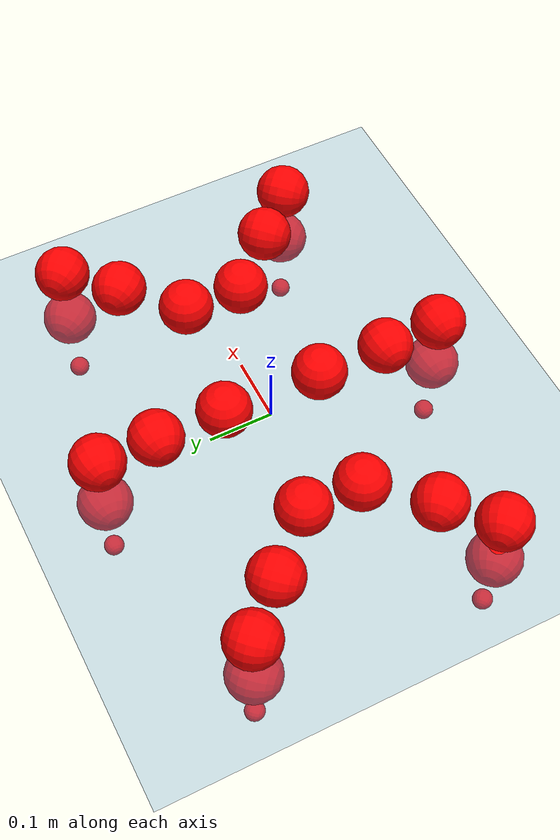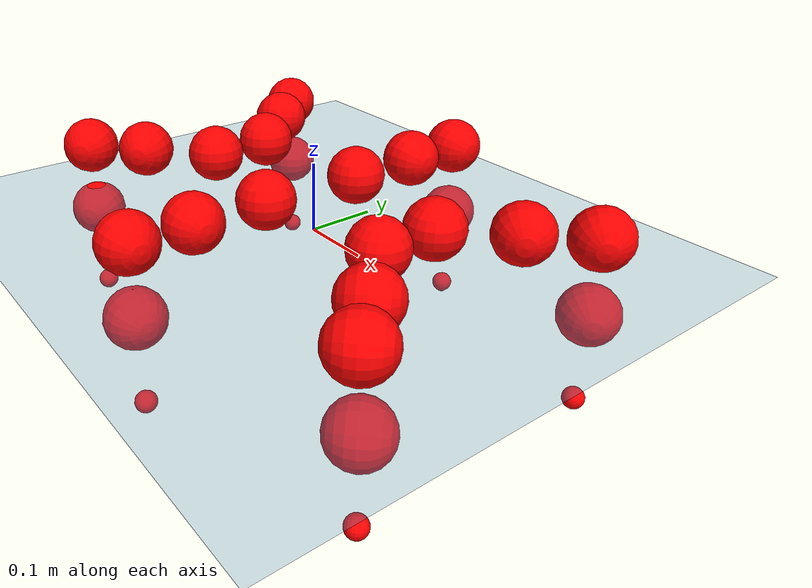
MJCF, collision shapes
<mujoco model="Golem">
  <compiler angle="radian" assetdir="assets" balanceinertia="true" inertiafromgeom="false"/>

  <option timestep="0.005" density="1.2" viscosity="2e-05"/>

  <size nkey="1"/>

  <visual>
    <quality shadowsize="8192"/>
    <map shadowclip="0.5"/>
  </visual>

  <default>
    <default class="/">
      <joint armature="0.01" damping="0.01" frictionloss="0.01"/>
      <geom contype="0" conaffinity="0" group="1" solref="-1000 -80"/>
      <site size="0.01 0.005 0.005" group="5"/>
      <general forcelimited="true" biastype="affine" gainprm="25" biasprm="0 -25 -0.5"/>
      <default class="visual">
        <geom type="mesh" group="2"/>
      </default>
      <default class="collision">
        <geom group="3"/>
      </default>
      <default class="foot">
        <geom size="0.01 0 0" condim="6" group="4" priority="1" solimp="0.015 1 0.01"/>
      </default>
      <default class="reward_collision_sphere">
        <geom group="5" rgba="1 0 0 1"/>
      </default>
    </default>
  </default>

  <asset>
    <texture type="skybox" colorspace="auto" name="//unnamed_texture_0" builtin="gradient" rgb1="0.95 0.95 0.95" rgb2="0.95 0.95 0.95" width="100" height="600"/>
    <texture type="2d" colorspace="auto" name="texplane" builtin="checker" rgb1="0.345 0.575 0.748" rgb2="0.345 0.575 0.748" markrgb="1 1 1" width="512" height="512"/>
    <material name="MatPlane" class="/" texture="texplane" texuniform="true" texrepeat="2 2" specular="0.9"/>
    <mesh name="body" class="/" file="body.stl" scale="0.001 0.001 0.001"/>
    <mesh name="coxa" class="/" file="coxa.stl" scale="0.001 0.001 0.001"/>
    <mesh name="femur" class="/" file="femur.stl" scale="0.001 0.001 0.001"/>
    <mesh name="tibia" class="/" file="tibia.stl" scale="0.001 0.001 0.001"/>
    <mesh name="tarsus" class="/" file="tarsus.stl" scale="0.001 0.001 0.001"/>
  </asset>

  <worldbody>
    <geom name="floor" class="/" size="100 100 0.125" type="plane" group="0" material="MatPlane"/>
    <light name="toplight_shadow" class="/" pos="0 0 5" dir="0.0990148 0.0990148 -0.990148" type="directional" ambient="0.04 0.04 0.04" diffuse="0.55 0.55 0.55" specular="0.12 0.12 0.12"/>
    <light name="toplight_fill" class="/" pos="0 0 5" dir="0.0990148 0.0990148 -0.990148" type="directional" castshadow="false" ambient="0.04 0.04 0.04" diffuse="0.3 0.3 0.3" specular="0.08 0.08 0.08"/>
    <body name="trunk" pos="-0.00105452 0.000220554 1.92747e-07" quat="1 -0.00018509 0.000167968 -0.000111265">
      <inertial pos="0.000744789 0.00091338 -0.00491156" quat="0.999926 -0.000573255 0.0112374 0.00470206" mass="4.17765" diaginertia="0.0299924 0.00458473 0.0115301"/>
      <joint name="//unnamed_joint_0" type="free"/>
      <geom name="//unnamed_geom_1" class="/" pos="0 0 0.0658943" quat="1 0 0 0" type="mesh" rgba="0.9 0.9 0.9 1" mesh="body"/>
      <site name="imu" class="/" pos="0.159847 0.00482044 0.104085" size="0.0104275"/>
      <camera name="track" class="/" pos="0 -1.71346 0" quat="0.707107 0.707107 0 0" mode="trackcom"/>
      <camera name="ego_camera" class="/" pos="0.161451 0 0.10296" quat="-0.5 -0.5 0.5 0.5"/>
      <body name="coxa_RR" pos="-0.220659 -0.0694299 0.0651518" quat="0.382528 0.000224029 2.42357e-05 -0.923944">
        <inertial pos="0.00070927 -0.000201109 0.000843462" quat="0.999993 0.00383253 -0.000145803 4.08395e-05" mass="0.223099" diaginertia="0.0297585 0.00450249 0.0113542"/>
        <joint name="coxa_joint_RR" class="/" pos="0 0 0" axis="-0.000492435 -0.0010065 -0.999999" range="-3.12937 3.18747" armature="0.010551" damping="0.0139177" frictionloss="0.0102575"/>
        <geom name="//unnamed_geom_2" class="/" type="mesh" rgba="0.2 0.2 0.2 1" mesh="coxa"/>
        <geom name="//unnamed_geom_3" class="reward_collision_sphere" size="0.0417101" pos="-0.0372579 0 0"/>
        <body name="femur_RR" pos="0.0735173 0.00243722 0.00214936" quat="0.500167 -0.499913 0.499861 0.500059">
          <inertial pos="0.000687648 0.00234597 0.00257589" quat="0.999992 0.00327702 0.00235966 0.000797052" mass="0.226853" diaginertia="0.0302304 0.00458572 0.01198"/>
          <joint name="femur_joint_RR" class="/" pos="0 0 0" axis="0.00178525 0.00428093 -0.999989" range="-3.1537 3.14017" armature="0.00989253" damping="0.0104509" frictionloss="0.011783"/>
          <geom name="//unnamed_geom_4" class="/" type="mesh" rgba="0.9 0.9 0.9 1" mesh="femur"/>
          <geom name="//unnamed_geom_5" class="reward_collision_sphere" size="0.0417101"/>
          <body name="tibia_RR" pos="0.000490802 -0.0906835 -0.00238216" quat="7.05648e-05 1 0.000149484 0.000191406">
            <inertial pos="0.00015821 -0.00226578 0.000746633" quat="0.999999 -0.0008027 9.74865e-05 0.000777621" mass="0.225278" diaginertia="0.0297131 0.00461711 0.0115697"/>
            <joint name="tibia_joint_RR" class="/" pos="0 0 0" axis="0.000257878 -0.00155977 0.999999" range="-3.14016 3.13938" armature="0.0104856" damping="0.0179228" frictionloss="0.0100528"/>
            <geom name="//unnamed_geom_6" class="/" type="mesh" rgba="0.2 0.2 0.2 1" mesh="tibia"/>
            <geom name="//unnamed_geom_7" class="reward_collision_sphere" size="0.0417101"/>
            <body name="tarsus_RR" pos="0.106493 0.000690757 6.49931e-05" quat="1 -9.36085e-05 5.75352e-05 -6.02707e-06">
              <inertial pos="0.0743816 8.94756e-05 -0.000343951" quat="0.499721 0.500682 0.499084 0.500511" mass="0.232366" diaginertia="0.0306133 0.00470709 0.0115581"/>
              <joint name="tarsus_joint_RR" class="/" pos="0 0 0" axis="-0.00272657 -0.00147265 0.999995" range="-3.19121 3.19036" armature="0.0106785" damping="0.00036494" frictionloss="0.0105841"/>
              <geom name="//unnamed_geom_8" class="/" type="mesh" rgba="0.9 0.9 0.9 1" mesh="tarsus"/>
              <geom name="foot_1" class="foot" size="0.010819" pos="0.139096 0 0" quat="0 -0.707107 0 0.707107"/>
              <geom name="//unnamed_geom_10" class="reward_collision_sphere" size="0.0417101"/>
              <geom name="//unnamed_geom_11" class="reward_collision_sphere" size="0.0156413" pos="0.133507 0 0"/>
              <site name="foot_1" class="foot" pos="0.139096 0 0" quat="0 -0.707107 0 0.707107" size="0.0104275"/>
            </body>
          </body>
        </body>
      </body>
      <body name="coxa_RM" pos="-0.00252905 -0.114685 0.0656972" quat="0.707186 -1.18451e-05 -0.000164835 -0.707028">
        <inertial pos="0.000607064 -0.00035055 0.00119058" quat="0.999919 -0.00464873 -0.00803382 0.00874266" mass="0.231015" diaginertia="0.0298454 0.0046145 0.0118062"/>
        <joint name="coxa_joint_RM" class="/" pos="0 0 0" axis="0.0020111 -0.00442904 -0.999988" stiffness="0.000246186" range="-3.12308 3.12842" armature="0.0102586" damping="0.00908906" frictionloss="0.0104748"/>
        <geom name="//unnamed_geom_12" class="/" type="mesh" rgba="0.2 0.2 0.2 1" mesh="coxa"/>
        <geom name="//unnamed_geom_13" class="reward_collision_sphere" size="0.0417101" pos="-0.0372579 0 0"/>
        <body name="femur_RM" pos="0.0731338 -0.000457681 -0.00288842" quat="0.499138 -0.499885 0.500722 0.500254">
          <inertial pos="-0.00249433 -0.000435216 -0.00259899" quat="1 4.03845e-05 4.65935e-05 -0.000519257" mass="0.232597" diaginertia="0.0295776 0.00462298 0.0115273"/>
          <joint name="femur_joint_RM" class="/" pos="0 0 0" axis="0.000729452 0.000891709 -0.999999" range="-3.16037 3.18721" armature="0.0100055" damping="0.0107072" frictionloss="0.0092526"/>
          <geom name="//unnamed_geom_14" class="/" type="mesh" rgba="0.9 0.9 0.9 1" mesh="femur"/>
          <geom name="//unnamed_geom_15" class="reward_collision_sphere" size="0.0417101"/>
          <body name="tibia_RM" pos="-0.00110476 -0.0915498 0.00234158" quat="3.77452e-05 1 3.93252e-05 -2.90289e-05">
            <inertial pos="0.000105117 -0.00128561 -0.000293383" quat="1 -0.000256493 -0.000224095 -0.000102083" mass="0.225918" diaginertia="0.0296664 0.00459339 0.0114475"/>
            <joint name="tibia_joint_RM" class="/" pos="0 0 0" axis="0.00486581 -0.0103176 0.999935" range="-3.15572 3.09639" armature="0.0107496" damping="0" frictionloss="0.0102144"/>
            <geom name="//unnamed_geom_16" class="/" type="mesh" rgba="0.2 0.2 0.2 1" mesh="tibia"/>
            <geom name="//unnamed_geom_17" class="reward_collision_sphere" size="0.0417101"/>
            <body name="tarsus_RM" pos="0.106466 0.00207229 -0.00208593" quat="1 8.19693e-05 0.000193397 1.14621e-05">
              <inertial pos="0.0757756 0.000291912 0.00132938" quat="0.50639 0.497637 0.499197 0.496719" mass="0.223959" diaginertia="0.0294449 0.00456511 0.0110647"/>
              <joint name="tarsus_joint_RM" class="/" pos="0 0 0" axis="-0.00389368 -0.000257103 0.999992" range="-3.18297 3.08814" armature="0.0103178" damping="0.00247504" frictionloss="0.0109619"/>
              <geom name="//unnamed_geom_18" class="/" type="mesh" rgba="0.9 0.9 0.9 1" mesh="tarsus"/>
              <geom name="foot_2" class="foot" size="0.0101131" pos="0.139096 0 0" quat="0 -0.707107 0 0.707107"/>
              <geom name="//unnamed_geom_20" class="reward_collision_sphere" size="0.0417101"/>
              <geom name="//unnamed_geom_21" class="reward_collision_sphere" size="0.0156413" pos="0.133507 0 0"/>
              <site name="foot_2" class="foot" pos="0.139096 0 0" quat="0 -0.707107 0 0.707107" size="0.0104275"/>
            </body>
          </body>
        </body>
      </body>
      <body name="coxa_RF" pos="0.219173 -0.0713347 0.0643165" quat="0.923879 2.87768e-06 2.46034e-07 -0.382684">
        <inertial pos="-0.00062994 -0.00262178 -0.000533131" quat="0.999986 -0.00194219 -0.00467963 0.00133059" mass="0.2308" diaginertia="0.0300443 0.00459194 0.0115011"/>
        <joint name="coxa_joint_RF" class="/" pos="0 0 0" axis="0.000158004 5.13638e-05 -1" range="-3.14123 3.16103" armature="0.0103336" damping="0" frictionloss="0.0105899"/>
        <geom name="//unnamed_geom_22" class="/" type="mesh" rgba="0.2 0.2 0.2 1" mesh="coxa"/>
        <geom name="//unnamed_geom_23" class="reward_collision_sphere" size="0.0417101" pos="-0.0372579 0 0"/>
        <body name="femur_RF" pos="0.0757635 -0.000259885 -0.00233082" quat="0.499937 -0.499995 0.500123 0.499945">
          <inertial pos="-0.000239809 1.46245e-05 0.00186484" quat="0.999986 -0.00319545 -0.00355705 0.00221342" mass="0.223108" diaginertia="0.0297323 0.00447494 0.0115192"/>
          <joint name="femur_joint_RF" class="/" pos="0 0 0" axis="-8.40707e-05 0.000292229 -1" range="-3.0916 3.1202" armature="0.01035" damping="0.00925216" frictionloss="0.00968488"/>
          <geom name="//unnamed_geom_24" class="/" type="mesh" rgba="0.9 0.9 0.9 1" mesh="femur"/>
          <geom name="//unnamed_geom_25" class="reward_collision_sphere" size="0.0417101"/>
          <body name="tibia_RF" pos="-0.00249206 -0.091479 -0.000872093" quat="-1.57984e-05 1 -1.59738e-05 -5.94267e-06">
            <inertial pos="0.00129913 0.000278868 -0.000150542" quat="0.999919 0.00756931 0.0100643 -0.00205375" mass="0.232819" diaginertia="0.0290729 0.00460908 0.0116593"/>
            <joint name="tibia_joint_RF" class="/" pos="0 0 0" axis="-0.0051173 0.00308246 0.999982" range="-3.14025 3.13505" armature="0.0100017" damping="0.00264752" frictionloss="0.0102022"/>
            <geom name="//unnamed_geom_26" class="/" type="mesh" rgba="0.2 0.2 0.2 1" mesh="tibia"/>
            <geom name="//unnamed_geom_27" class="reward_collision_sphere" size="0.0417101"/>
            <body name="tarsus_RF" pos="0.110583 -0.00111606 -0.00216686" quat="1 -0.00013848 4.8073e-05 5.7459e-05">
              <inertial pos="0.0742092 -0.00213832 -0.000789304" quat="0.503875 0.498249 0.49738 0.50047" mass="0.218679" diaginertia="0.0293482 0.0044899 0.0115175"/>
              <joint name="tarsus_joint_RF" class="/" pos="0 0 0" axis="-0.00927082 0.00627926 0.999937" range="-3.17128 3.1399" armature="0.0104347" damping="0.0197925" frictionloss="0.0109735"/>
              <geom name="//unnamed_geom_28" class="/" type="mesh" rgba="0.9 0.9 0.9 1" mesh="tarsus"/>
              <geom name="foot_3" class="foot" size="0.01016" pos="0.139096 0 0" quat="0 -0.707107 0 0.707107"/>
              <geom name="//unnamed_geom_30" class="reward_collision_sphere" size="0.0417101"/>
              <geom name="//unnamed_geom_31" class="reward_collision_sphere" size="0.0156413" pos="0.133507 0 0"/>
              <site name="foot_3" class="foot" pos="0.139096 0 0" quat="0 -0.707107 0 0.707107" size="0.0104275"/>
            </body>
          </body>
        </body>
      </body>
      <body name="coxa_LR" pos="-0.220364 0.0743478 0.0685327" quat="0.38273 0.000178747 -0.000287535 0.92386">
        <inertial pos="0.000678591 0.000482453 0.00266058" quat="0.999999 -0.00124082 -0.000154352 0.00073283" mass="0.227047" diaginertia="0.0292168 0.00453334 0.0110795"/>
        <joint name="coxa_joint_LR" class="/" pos="0 0 0" axis="0.000531709 0.00151275 -0.999999" range="-3.13386 3.12056" armature="0.0107257" damping="0" frictionloss="0.0091376"/>
        <geom name="//unnamed_geom_32" class="/" type="mesh" rgba="0.2 0.2 0.2 1" mesh="coxa"/>
        <geom name="//unnamed_geom_33" class="reward_collision_sphere" size="0.0417101" pos="-0.0372579 0 0"/>
        <body name="femur_LR" pos="0.0755066 -0.00292027 -0.000118007" quat="0.499695 -0.500431 0.499815 0.500059">
          <inertial pos="0.00212632 0.000250669 0.00120755" quat="0.99999 0.00330248 -0.00270985 0.00136493" mass="0.219509" diaginertia="0.0293713 0.00462404 0.0115684"/>
          <joint name="femur_joint_LR" class="/" pos="0 0 0" axis="-5.66662e-05 -0.00601998 0.999982" range="-3.19216 3.0915" armature="0.00916945" damping="8.16254e-05" frictionloss="0.0104464"/>
          <geom name="//unnamed_geom_34" class="/" type="mesh" rgba="0.9 0.9 0.9 1" mesh="femur"/>
          <geom name="//unnamed_geom_35" class="reward_collision_sphere" size="0.0417101"/>
          <body name="tibia_LR" pos="0.00174087 -0.0942799 -0.00076826" quat="-1.514e-06 1 -9.61397e-06 1.67587e-05">
            <inertial pos="-0.000209493 -0.00197587 -7.85296e-05" quat="1 -0.000102382 0.000473549 0.000135719" mass="0.230613" diaginertia="0.0290599 0.00471128 0.0114148"/>
            <joint name="tibia_joint_LR" class="/" pos="0 0 0" axis="0.0125457 0.00122191 -0.999921" range="-3.14571 3.09872" armature="0.0109281" damping="0.000114051" frictionloss="0.0102792"/>
            <geom name="//unnamed_geom_36" class="/" type="mesh" rgba="0.2 0.2 0.2 1" mesh="tibia"/>
            <geom name="//unnamed_geom_37" class="reward_collision_sphere" size="0.0417101"/>
            <body name="tarsus_LR" pos="0.111955 0.000748526 -0.000761866" quat="0.999999 0.000599755 0.000166719 0.00107372">
              <inertial pos="0.0732105 -0.001429 0.00128401" quat="0.499825 0.500178 0.499462 0.500533" mass="0.227712" diaginertia="0.0294086 0.00447031 0.0115822"/>
              <joint name="tarsus_joint_LR" class="/" pos="0 0 0" axis="0.000586937 -0.00138714 -0.999999" range="-3.14709 3.1513" armature="0.0101222" damping="0.0258094" frictionloss="0.0115972"/>
              <geom name="//unnamed_geom_38" class="/" type="mesh" rgba="0.9 0.9 0.9 1" mesh="tarsus"/>
              <geom name="foot_4" class="foot" size="0.010622" pos="0.139096 0 0" quat="0.707107 0 -0.707107 0"/>
              <geom name="//unnamed_geom_40" class="reward_collision_sphere" size="0.0417101"/>
              <geom name="//unnamed_geom_41" class="reward_collision_sphere" size="0.0156413" pos="0.133507 0 0"/>
              <site name="foot_4" class="foot" pos="0.139096 0 0" quat="0.707107 0 -0.707107 0" size="0.0104275"/>
            </body>
          </body>
        </body>
      </body>
      <body name="coxa_LM" pos="0.000342173 0.112617 0.0650261" quat="0.707247 -0.000134871 0.000160199 0.706967">
        <inertial pos="0.0025031 0.000126386 -0.000298333" quat="0.99999 0.00010278 -0.00424508 -0.00148376" mass="0.221022" diaginertia="0.0296922 0.00449258 0.0114064"/>
        <joint name="coxa_joint_LM" class="/" pos="0 0 0" axis="0.00345538 0.00394853 -0.999986" range="-3.13841 3.136" armature="0.0105699" damping="0" frictionloss="0.0101308"/>
        <geom name="//unnamed_geom_42" class="/" type="mesh" rgba="0.2 0.2 0.2 1" mesh="coxa"/>
        <geom name="//unnamed_geom_43" class="reward_collision_sphere" size="0.0417101" pos="-0.0372579 0 0"/>
        <body name="femur_LM" pos="0.0697392 0.000363689 0.00119764" quat="0.500119 -0.499963 0.49984 0.500078">
          <inertial pos="0.000664075 -0.000227482 -0.00020254" quat="0.999987 -0.0030651 0.00306343 -0.00256888" mass="0.23251" diaginertia="0.0289776 0.00465574 0.0120379"/>
          <joint name="femur_joint_LM" class="/" pos="0 0 0" axis="0.0151854 0.00121235 0.999884" range="-3.09162 3.14493" armature="0.0110963" damping="0" frictionloss="0.0103876"/>
          <geom name="//unnamed_geom_44" class="/" type="mesh" rgba="0.9 0.9 0.9 1" mesh="femur"/>
          <geom name="//unnamed_geom_45" class="reward_collision_sphere" size="0.0417101"/>
          <body name="tibia_LM" pos="0.000158049 -0.0896809 0.000536143" quat="-3.11525e-05 1 0.000197867 -0.000188075">
            <inertial pos="-0.00241291 0.000128947 -0.000211075" quat="0.999987 0.00126723 -0.00401721 0.00270976" mass="0.226065" diaginertia="0.0297231 0.00467529 0.0116992"/>
            <joint name="tibia_joint_LM" class="/" pos="0 0 0" axis="0.000373607 -0.00332493 -0.999994" stiffness="0.00305777" range="-3.16167 3.14624" armature="0.00980234" damping="0.00139073" frictionloss="0.00906753"/>
            <geom name="//unnamed_geom_46" class="/" type="mesh" rgba="0.2 0.2 0.2 1" mesh="tibia"/>
            <geom name="//unnamed_geom_47" class="reward_collision_sphere" size="0.0417101"/>
            <body name="tarsus_LM" pos="0.112257 0.000389172 0.00043673" quat="1 0.000420518 0.00012592 -0.000263215">
              <inertial pos="0.0728667 -0.000463093 -0.000670961" quat="0.497942 0.496005 0.508638 0.497313" mass="0.224446" diaginertia="0.0289958 0.00461473 0.0113886"/>
              <joint name="tarsus_joint_LM" class="/" pos="0 0 0" axis="-0.00876544 5.75661e-05 -0.999962" stiffness="0.00276275" range="-3.10931 3.13835" armature="0.00992907" damping="0.010077" frictionloss="0.0105804"/>
              <geom name="//unnamed_geom_48" class="/" type="mesh" rgba="0.9 0.9 0.9 1" mesh="tarsus"/>
              <geom name="foot_5" class="foot" size="0.0115375" pos="0.139096 0 0" quat="0.707107 0 -0.707107 0"/>
              <geom name="//unnamed_geom_50" class="reward_collision_sphere" size="0.0417101"/>
              <geom name="//unnamed_geom_51" class="reward_collision_sphere" size="0.0156413" pos="0.133507 0 0"/>
              <site name="foot_5" class="foot" pos="0.139096 0 0" quat="0.707107 0 -0.707107 0" size="0.0104275"/>
            </body>
          </body>
        </body>
      </body>
      <body name="coxa_LF" pos="0.220506 0.0722691 0.0647399" quat="0.923786 2.76498e-05 -5.07772e-05 0.382908">
        <inertial pos="-0.000111697 -0.00245667 0.000490041" quat="0.999937 -0.00483816 0.00819863 0.00588517" mass="0.23107" diaginertia="0.0303342 0.00481941 0.0120558"/>
        <joint name="coxa_joint_LF" class="/" pos="0 0 0" axis="0.00159171 -0.000215799 -0.999999" range="-3.11133 3.13467" armature="0.0104591" damping="0.00762762" frictionloss="0.00942364"/>
        <geom name="//unnamed_geom_52" class="/" type="mesh" rgba="0.2 0.2 0.2 1" mesh="coxa"/>
        <geom name="//unnamed_geom_53" class="reward_collision_sphere" size="0.0417101" pos="-0.0372579 0 0"/>
        <body name="femur_LF" pos="0.0712487 -0.000231738 0.00153225" quat="0.500207 -0.50006 0.499747 0.499986">
          <inertial pos="-0.000436057 0.000644317 -0.00217824" quat="0.999988 -0.00235849 -0.0042448 -0.00116311" mass="0.228631" diaginertia="0.0293643 0.00464075 0.0114077"/>
          <joint name="femur_joint_LF" class="/" pos="0 0 0" axis="-0.0039911 1.82895e-05 0.999992" range="-3.12257 3.1417" armature="0.0109403" damping="0.00380869" frictionloss="0.0102578"/>
          <geom name="//unnamed_geom_54" class="/" type="mesh" rgba="0.9 0.9 0.9 1" mesh="femur"/>
          <geom name="//unnamed_geom_55" class="reward_collision_sphere" size="0.0417101"/>
          <body name="tibia_LF" pos="0.000110568 -0.0933619 0.00036418" quat="-9.73503e-05 1 7.00365e-05 0.000319031">
            <inertial pos="0.0023871 0.00259426 0.00257265" quat="0.999988 -0.000225857 0.00406225 0.00259853" mass="0.227555" diaginertia="0.0298672 0.00468049 0.0119997"/>
            <joint name="tibia_joint_LF" class="/" pos="0 0 0" axis="-0.00489817 0.000619157 -0.999988" stiffness="0.000138472" range="-3.11818 3.09033" armature="0.0108712" damping="0.000901146" frictionloss="0.0100149"/>
            <geom name="//unnamed_geom_56" class="/" type="mesh" rgba="0.2 0.2 0.2 1" mesh="tibia"/>
            <geom name="//unnamed_geom_57" class="reward_collision_sphere" size="0.0417101"/>
            <body name="tarsus_LF" pos="0.109469 0.00107846 -0.000958986" quat="1 0.000139132 1.5559e-05 1.21752e-05">
              <inertial pos="0.0741627 0.00108091 0.00235618" quat="0.497204 0.501198 0.507092 0.494415" mass="0.228368" diaginertia="0.030524 0.00462858 0.0120048"/>
              <joint name="tarsus_joint_LF" class="/" pos="0 0 0" axis="-1.74442e-05 0.000966848 -1" range="-3.17967 3.08846" armature="0.0105693" damping="0.0172969" frictionloss="0.0105759"/>
              <geom name="//unnamed_geom_58" class="/" type="mesh" rgba="0.9 0.9 0.9 1" mesh="tarsus"/>
              <geom name="foot_6" class="foot" size="0.0106999" pos="0.139096 0 0" quat="0.707107 0 -0.707107 0"/>
              <geom name="//unnamed_geom_60" class="reward_collision_sphere" size="0.0417101"/>
              <geom name="//unnamed_geom_61" class="reward_collision_sphere" size="0.0156413" pos="0.133507 0 0"/>
              <site name="foot_6" class="foot" pos="0.139096 0 0" quat="0.707107 0 -0.707107 0" size="0.0104275"/>
            </body>
          </body>
        </body>
      </body>
    </body>
  </worldbody>

  <contact>
    <pair class="/" geom1="floor" geom2="foot_1" name="//unnamed_contact_0"/>
    <pair class="/" geom1="floor" geom2="foot_2" name="//unnamed_contact_1"/>
    <pair class="/" geom1="floor" geom2="foot_3" name="//unnamed_contact_2"/>
    <pair class="/" geom1="floor" geom2="foot_4" name="//unnamed_contact_3"/>
    <pair class="/" geom1="floor" geom2="foot_5" name="//unnamed_contact_4"/>
    <pair class="/" geom1="floor" geom2="foot_6" name="//unnamed_contact_5"/>
  </contact>

  <actuator>
    <general name="coxa_joint_RR" class="/" joint="coxa_joint_RR" forcerange="-7.8834 7.8834" gainprm="26.474" biasprm="0 -26.474 -0.544512"/>
    <general name="femur_joint_RR" class="/" joint="femur_joint_RR" forcerange="-7.5665 7.5665" gainprm="26.474" biasprm="0 -26.474 -0.544512"/>
    <general name="tibia_joint_RR" class="/" joint="tibia_joint_RR" forcerange="-7.58963 7.58963" gainprm="26.474" biasprm="0 -26.474 -0.544512"/>
    <general name="tarsus_joint_RR" class="/" joint="tarsus_joint_RR" forcerange="-7.72343 7.72343" gainprm="26.474" biasprm="0 -26.474 -0.544512"/>
    <general name="coxa_joint_RM" class="/" joint="coxa_joint_RM" forcerange="-7.48808 7.48808" gainprm="26.474" biasprm="0 -26.474 -0.544512"/>
    <general name="femur_joint_RM" class="/" joint="femur_joint_RM" forcerange="-7.57069 7.57069" gainprm="26.474" biasprm="0 -26.474 -0.544512"/>
    <general name="tibia_joint_RM" class="/" joint="tibia_joint_RM" forcerange="-7.55552 7.55552" gainprm="26.474" biasprm="0 -26.474 -0.544512"/>
    <general name="tarsus_joint_RM" class="/" joint="tarsus_joint_RM" forcerange="-7.17864 7.17864" gainprm="26.474" biasprm="0 -26.474 -0.544512"/>
    <general name="coxa_joint_RF" class="/" joint="coxa_joint_RF" forcerange="-7.47337 7.47337" gainprm="26.474" biasprm="0 -26.474 -0.544512"/>
    <general name="femur_joint_RF" class="/" joint="femur_joint_RF" forcerange="-7.62054 7.62054" gainprm="26.474" biasprm="0 -26.474 -0.544512"/>
    <general name="tibia_joint_RF" class="/" joint="tibia_joint_RF" forcerange="-7.577 7.577" gainprm="26.474" biasprm="0 -26.474 -0.544512"/>
    <general name="tarsus_joint_RF" class="/" joint="tarsus_joint_RF" forcerange="-7.89979 7.89979" gainprm="26.474" biasprm="0 -26.474 -0.544512"/>
    <general name="coxa_joint_LR" class="/" joint="coxa_joint_LR" forcerange="-7.87675 7.87675" gainprm="26.474" biasprm="0 -26.474 -0.544512"/>
    <general name="femur_joint_LR" class="/" joint="femur_joint_LR" forcerange="-7.02597 7.02597" gainprm="26.474" biasprm="0 -26.474 -0.544512"/>
    <general name="tibia_joint_LR" class="/" joint="tibia_joint_LR" forcerange="-7.486 7.486" gainprm="26.474" biasprm="0 -26.474 -0.544512"/>
    <general name="tarsus_joint_LR" class="/" joint="tarsus_joint_LR" forcerange="-7.58647 7.58647" gainprm="26.474" biasprm="0 -26.474 -0.544512"/>
    <general name="coxa_joint_LM" class="/" joint="coxa_joint_LM" forcerange="-7.6065 7.6065" gainprm="26.474" biasprm="0 -26.474 -0.544512"/>
    <general name="femur_joint_LM" class="/" joint="femur_joint_LM" forcerange="-7.67623 7.67623" gainprm="26.474" biasprm="0 -26.474 -0.544512"/>
    <general name="tibia_joint_LM" class="/" joint="tibia_joint_LM" forcerange="-7.61408 7.61408" gainprm="26.474" biasprm="0 -26.474 -0.544512"/>
    <general name="tarsus_joint_LM" class="/" joint="tarsus_joint_LM" forcerange="-7.72804 7.72804" gainprm="26.474" biasprm="0 -26.474 -0.544512"/>
    <general name="coxa_joint_LF" class="/" joint="coxa_joint_LF" forcerange="-7.90601 7.90601" gainprm="26.474" biasprm="0 -26.474 -0.544512"/>
    <general name="femur_joint_LF" class="/" joint="femur_joint_LF" forcerange="-7.99589 7.99589" gainprm="26.474" biasprm="0 -26.474 -0.544512"/>
    <general name="tibia_joint_LF" class="/" joint="tibia_joint_LF" forcerange="-7.57827 7.57827" gainprm="26.474" biasprm="0 -26.474 -0.544512"/>
    <general name="tarsus_joint_LF" class="/" joint="tarsus_joint_LF" forcerange="-6.86671 6.86671" gainprm="26.474" biasprm="0 -26.474 -0.544512"/>
  </actuator>

  <sensor>
    <gyro site="imu" name="imu_angular_velocity"/>
    <velocimeter site="imu" name="imu_linear_velocity"/>
    <framelinvel objtype="site" objname="foot_1" name="foot_1_global_linear_velocity"/>
    <framelinvel objtype="site" objname="foot_2" name="foot_2_global_linear_velocity"/>
    <framelinvel objtype="site" objname="foot_3" name="foot_3_global_linear_velocity"/>
    <framelinvel objtype="site" objname="foot_4" name="foot_4_global_linear_velocity"/>
    <framelinvel objtype="site" objname="foot_5" name="foot_5_global_linear_velocity"/>
    <framelinvel objtype="site" objname="foot_6" name="foot_6_global_linear_velocity"/>
  </sensor>

  <keyframe>
    <key name="home" qpos="0 0 0.1457 1 0 0 0 0 0 0 0 0 0 0 0 0 0 0 0 0 0 0 0 0 0 0 0 0 0 0 0"/>
  </keyframe>
</mujoco>
